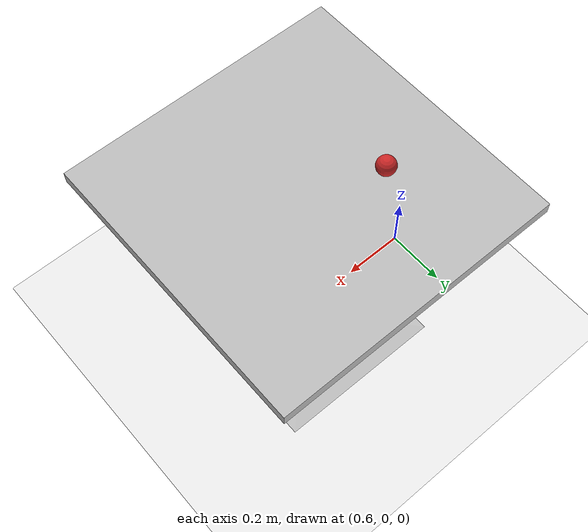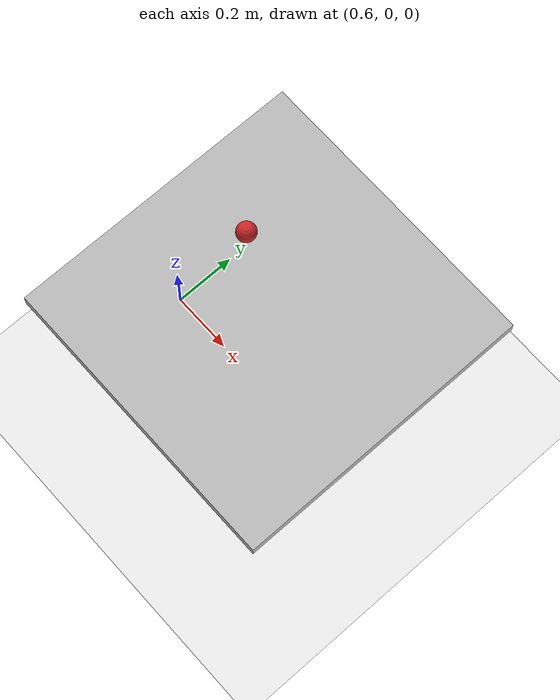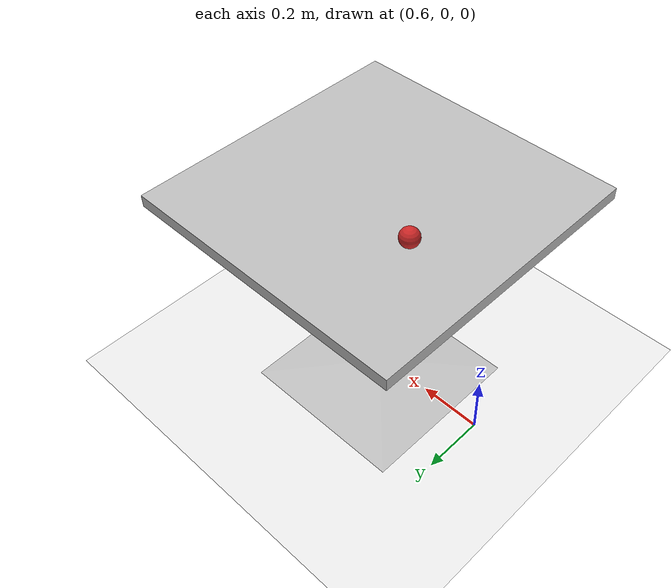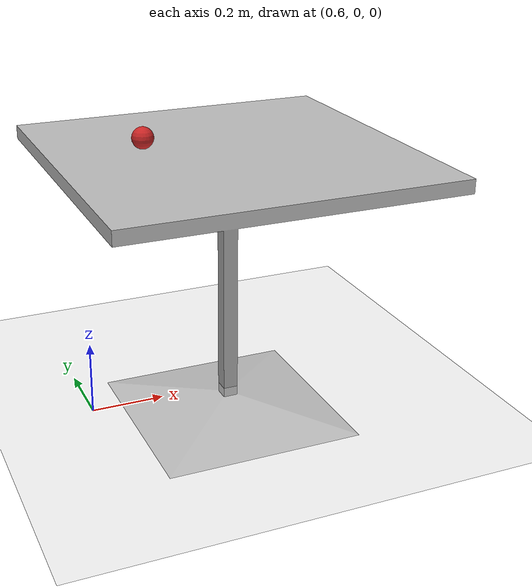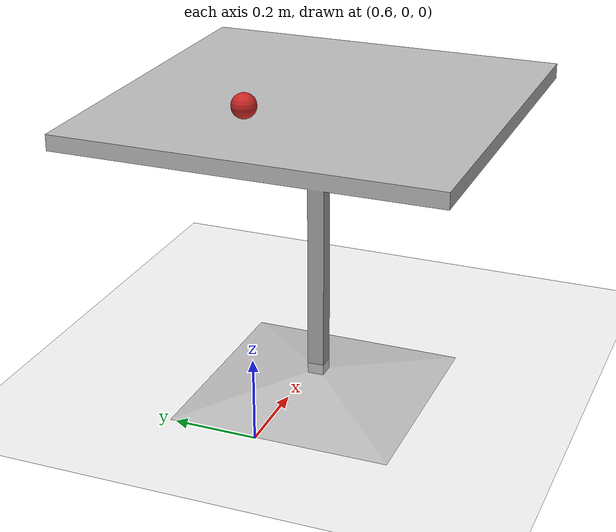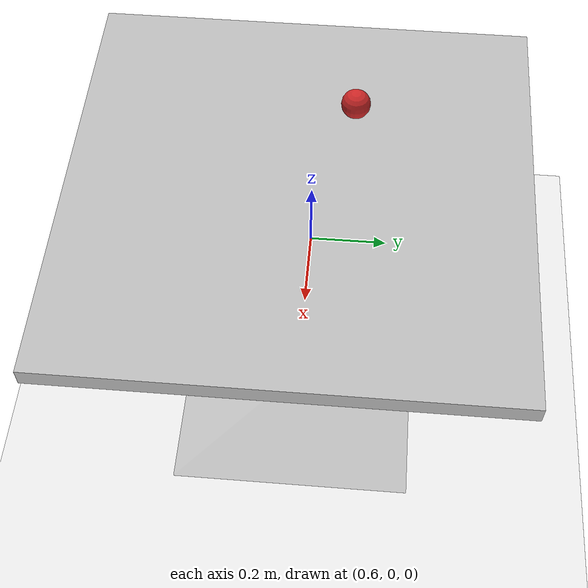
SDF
<sdf version="1.6">
 <world name="default">
  <model name="ground_plane">
   <static>1</static>
   <link name="link">
    <collision name="collision">
     <geometry><plane><normal>0 0 1</normal><size>100 100</size></plane></geometry>
     <surface><friction><ode><mu>100</mu><mu2>50</mu2></ode></friction></surface>
    </collision>
    <visual name="visual">
     <cast_shadows>0</cast_shadows>
     <geometry><plane><normal>0 0 1</normal><size>100 100</size></plane></geometry>
     <material>
      <script><uri>file://media/materials/scripts/gazebo.material</uri><name>Gazebo/Grey</name></script>
     </material>
    </visual>
   </link>
  </model>
  <light name="sun" type="directional">
   <pose>0 0 10 0 -0 0</pose>
   <diffuse>0.8 0.8 0.8 1</diffuse>
   <specular>0.2 0.2 0.2 1</specular>
   <attenuation>
    <range>1000</range>
    <constant>0.9</constant>
    <linear>0.01</linear>
    <quadratic>0.001</quadratic>
   </attenuation>
   <direction>-0.5 0.1 -0.9</direction>
  </light>
  <model name="table1">
   <static>1</static>
   <link name="link">
    <collision name="surface">
     <pose>0 0 0.755 0 -0 0</pose>
     <geometry><box><size>0.913 0.913 0.04</size></box></geometry>
    </collision>
    <collision name="column">
     <pose>0 0 0.37 0 -0 0</pose>
     <geometry><box><size>0.042 0.042 0.74</size></box></geometry>
    </collision>
    <collision name="base">
     <pose>0 0 0.02 0 -0 0</pose>
     <geometry><box><size>0.56 0.56 0.04</size></box></geometry>
    </collision>
    <visual name="visual">
     <geometry><mesh><uri>model://cafe_table/meshes/cafe_table.dae</uri></mesh></geometry>
    </visual>
   </link>
   <pose>1 0 -0.08 0 -0 0</pose>
  </model>
  <gravity>0 0 -9.8</gravity>
  <magnetic_field>6e-06 2.3e-05 -4.2e-05</magnetic_field>
  <atmosphere type="adiabatic"/>
  <physics name="default_physics" default="0" type="ode">
   <max_step_size>0.001</max_step_size>
   <real_time_factor>1</real_time_factor>
   <real_time_update_rate>1000</real_time_update_rate>
  </physics>
  <scene><ambient>0.4 0.4 0.4 1</ambient><background>0.7 0.7 0.7 1</background><shadows>1</shadows></scene>
  <audio><device>default</device></audio>
  <spherical_coordinates>
   <surface_model>EARTH_WGS84</surface_model>
   <latitude_deg>0</latitude_deg>
   <longitude_deg>0</longitude_deg>
   <elevation>0</elevation>
   <heading_deg>0</heading_deg>
  </spherical_coordinates>
  <model name="apple">
   <link name="link">
    <inertial>
     <mass>0.25</mass>
     <inertia><ixx>0.001</ixx><ixy>0</ixy><ixz>0</ixz><iyy>0.001</iyy><iyz>0</iyz><izz>0.001</izz></inertia>
    </inertial>
    <visual name="visual">
     <geometry><sphere><radius>0.03</radius></sphere></geometry>
     <material>
      <script><name>Gazebo/Red</name><uri>file://media/materials/scripts/gazebo.material</uri></script>
     </material>
    </visual>
    <collision name="collision">
     <geometry><sphere><radius>0.03</radius></sphere></geometry>
     <surface>
      <friction>
       <ode><mu>30</mu><mu2>30</mu2><fdir1>0 0 0</fdir1><slip1>0</slip1><slip2>0</slip2></ode>
       <torsional>
        <coefficient>1</coefficient>
        <patch_radius>0</patch_radius>
        <surface_radius>0</surface_radius>
        <use_patch_radius>1</use_patch_radius>
        <ode><slip>0</slip></ode>
       </torsional>
      </friction>
      <bounce><restitution_coefficient>0</restitution_coefficient><threshold>1e+06</threshold></bounce>
      <contact>
       <collide_without_contact>0</collide_without_contact>
       <collide_without_contact_bitmask>1</collide_without_contact_bitmask>
       <collide_bitmask>1</collide_bitmask>
       <ode>
        <soft_cfm>0</soft_cfm>
        <soft_erp>0.2</soft_erp>
        <kp>1e+06</kp>
        <kd>100</kd>
        <max_vel>1</max_vel>
        <min_depth>0.002</min_depth>
       </ode>
       <bullet>
        <split_impulse>1</split_impulse>
        <split_impulse_penetration_threshold>-0.01</split_impulse_penetration_threshold>
        <soft_cfm>0</soft_cfm>
        <soft_erp>0.2</soft_erp>
        <kp>1e+13</kp>
        <kd>1</kd>
       </bullet>
      </contact>
     </surface>
    </collision>
   </link>
   <static>0</static>
   <pose>0.8 0.1 0.722998 0 -0 0</pose>
  </model>
 </world>
</sdf>
